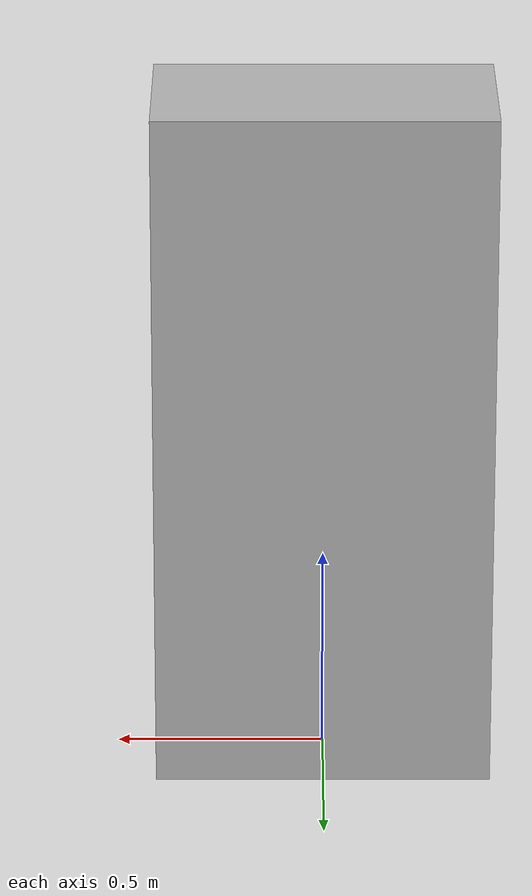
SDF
<?xml version='1.0' encoding='utf-8'?>
<sdf version="1.6">
  <model name="MetalCabinetYellow">
   <static>true</static>
    <link name="body">
      <pose>0 0 0 0 0 0</pose>

      <visual name="visual">
        <geometry>
          <mesh>
            <uri>model://MetalCabinetYellow/meshes/MetalCabinetYellow.obj</uri>
          </mesh>
        </geometry>
      </visual>

      <collision name="collision">
        <geometry>
          <mesh>
            <uri>model://MetalCabinetYellow/meshes/MetalCabinetYellow.obj</uri>
          </mesh>
        </geometry>
      </collision>

    </link>
  </model>
</sdf>
